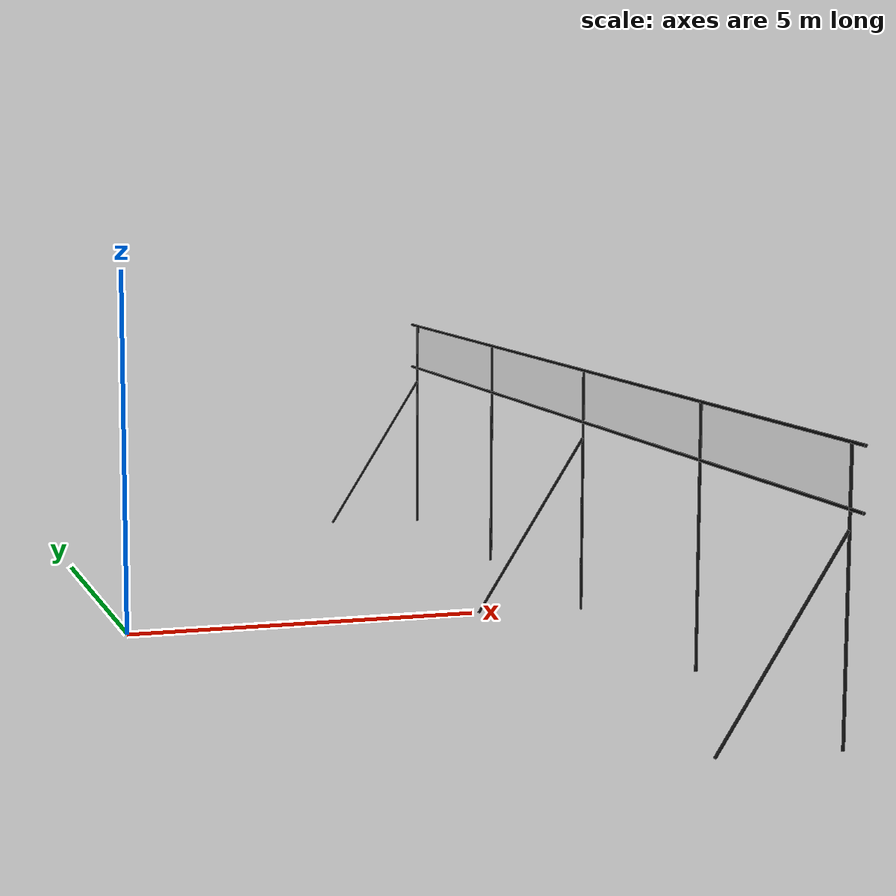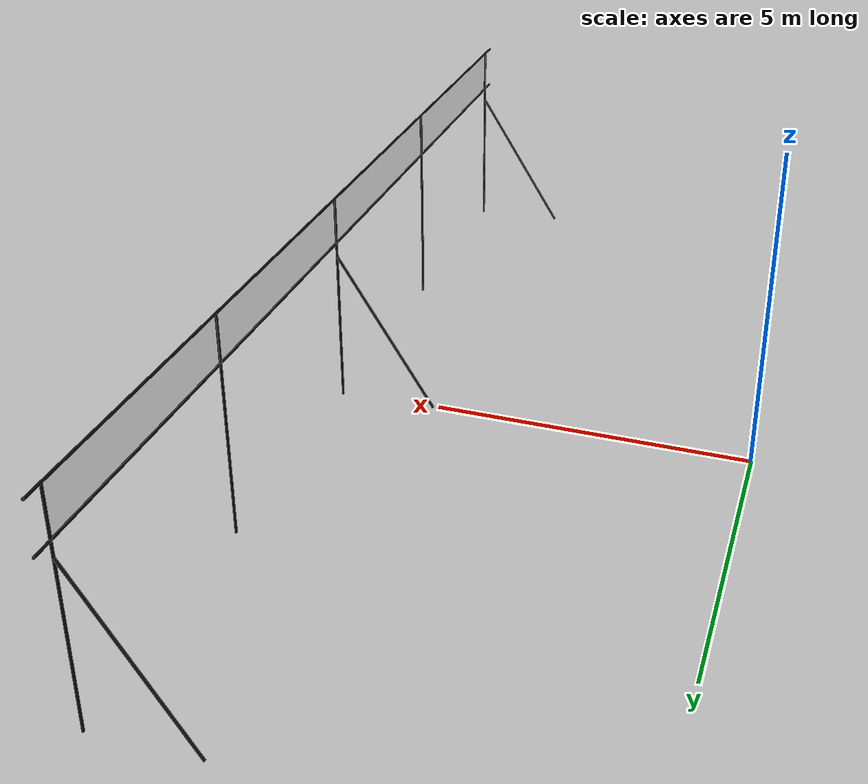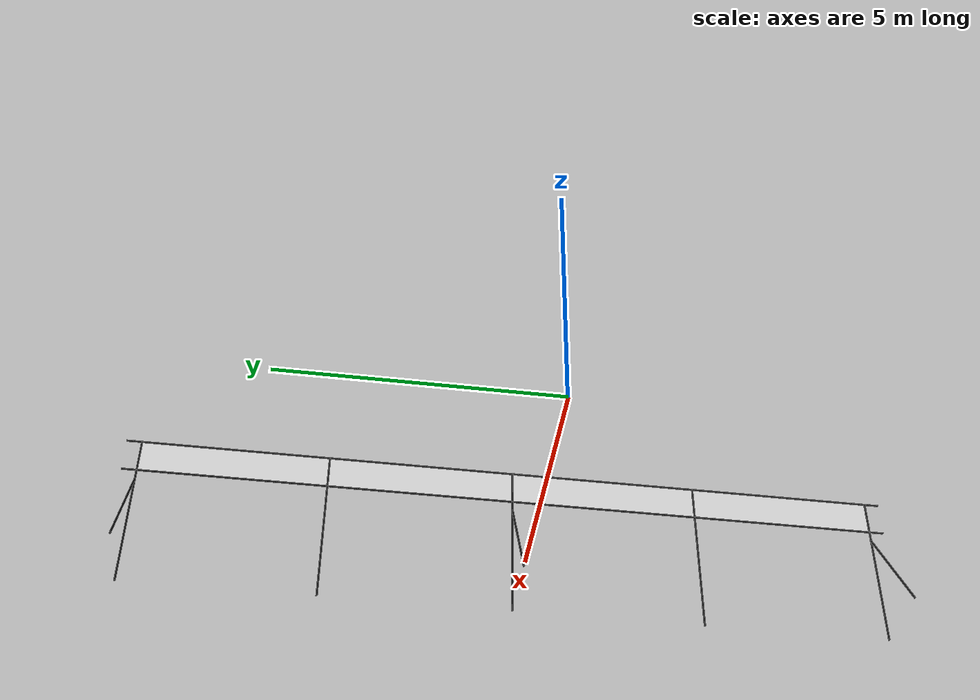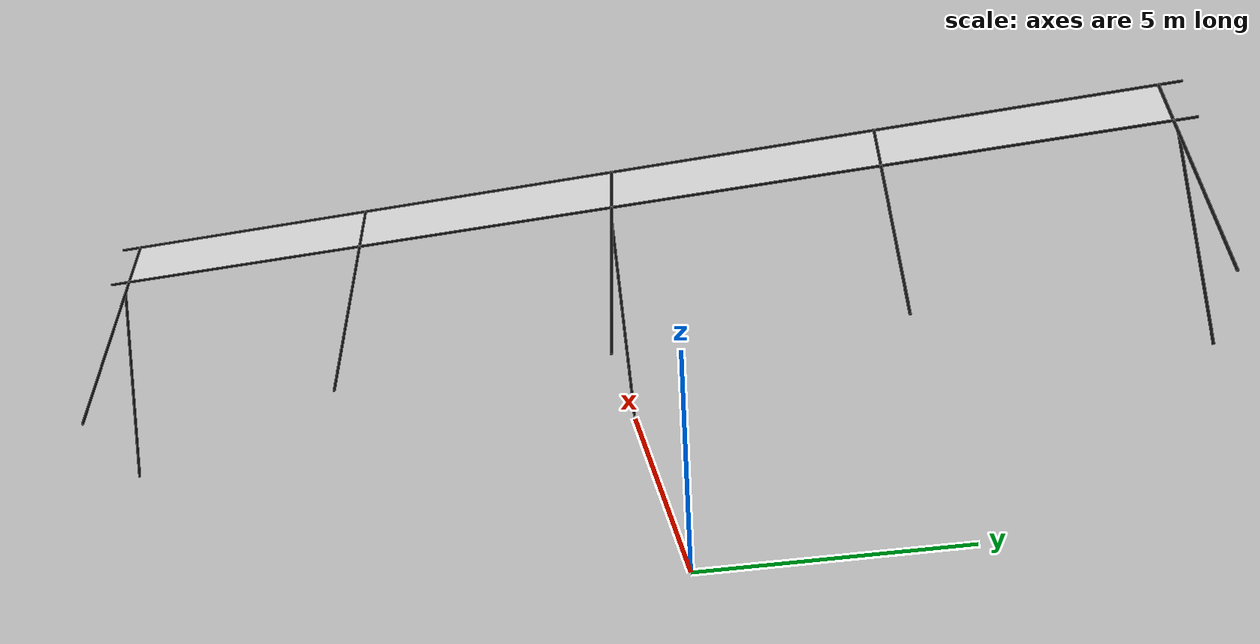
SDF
<?xml version="1.0" ?>
<sdf version="1.5">
<model name="frontage">
  <pose>0.0 0.0 0.0 0.0 0.0 0.0</pose>
  <static>1</static>

  <link name="link_1">
    <pose>6.68 -7.94 1.7 0.0 0.0 0.0</pose>
    <collision name="collision">
      <geometry>
	<cylinder>
	  <length>3.5</length>
	  <radius>0.02</radius>
        </cylinder>
      </geometry>
    </collision>
    <visual name="visual">
      <geometry>
	<cylinder>
	  <length>3.5</length>
	  <radius>0.02</radius>
	</cylinder>
      </geometry>
      <material>
	<script>
	  <uri>file://media/materials/scripts/gazebo.material</uri>
	  <name>Gazebo/Chrome</name>
	</script>
        <shader type='vertex'>
          <normal_map>__default__</normal_map>
        </shader>
        <ambient>0.5 0.5 0.5 1</ambient>
        <diffuse>0.05 0.05 0.05 1</diffuse>
        <specular>0.01 0.01 0.01 1</specular>
        <emissive>0.1 0.1 0.1 1</emissive>
      </material>
    </visual>
  </link>

  <link name="link_2">
    <pose>6.68 0 1.7 0.0 0.0 0.0</pose>
    <collision name="collision">
      <geometry>
	<cylinder>
	  <length>3.5</length>
	  <radius>0.02</radius>
        </cylinder>
      </geometry>
    </collision>
    <visual name="visual">
      <geometry>
	<cylinder>
	  <length>3.5</length>
	  <radius>0.02</radius>
	</cylinder>
      </geometry>
      <material>
	<script>
	  <uri>file://media/materials/scripts/gazebo.material</uri>
	  <name>Gazebo/Chrome</name>
	</script>
        <shader type='vertex'>
          <normal_map>__default__</normal_map>
        </shader>
        <ambient>0.5 0.5 0.5 1</ambient>
        <diffuse>0.05 0.05 0.05 1</diffuse>
        <specular>0.01 0.01 0.01 1</specular>
        <emissive>0.1 0.1 0.1 1</emissive>
      </material>
    </visual>
  </link>

  <link name="link_3">
    <pose>6.68 7.93 1.7 0.0 0.0 0.0</pose>
    <collision name="collision">
      <geometry>
	<cylinder>
	  <length>3.5</length>
	  <radius>0.02</radius>
        </cylinder>
      </geometry>
    </collision>
    <visual name="visual">
      <geometry>
	<cylinder>
	  <length>3.5</length>
	  <radius>0.02</radius>
	</cylinder>
      </geometry>
      <material>
	<script>
	  <uri>file://media/materials/scripts/gazebo.material</uri>
	  <name>Gazebo/Chrome</name>
	</script>
        <shader type='vertex'>
          <normal_map>__default__</normal_map>
        </shader>
        <ambient>0.5 0.5 0.5 1</ambient>
        <diffuse>0.05 0.05 0.05 1</diffuse>
        <specular>0.01 0.01 0.01 1</specular>
        <emissive>0.1 0.1 0.1 1</emissive>
      </material>
    </visual>
  </link>

  <link name="link_10">
    <pose>6.68 -4 1.7 0.0 0.0 0.0</pose>
    <collision name="collision">
      <geometry>
	<cylinder>
	  <length>3.5</length>
	  <radius>0.02</radius>
        </cylinder>
      </geometry>
    </collision>
    <visual name="visual">
      <geometry>
	<cylinder>
	  <length>3.5</length>
	  <radius>0.02</radius>
	</cylinder>
      </geometry>
      <material>
	<script>
	  <uri>file://media/materials/scripts/gazebo.material</uri>
	  <name>Gazebo/Chrome</name>
	</script>
        <shader type='vertex'>
          <normal_map>__default__</normal_map>
        </shader>
        <ambient>0.5 0.5 0.5 1</ambient>
        <diffuse>0.05 0.05 0.05 1</diffuse>
        <specular>0.01 0.01 0.01 1</specular>
        <emissive>0.1 0.1 0.1 1</emissive>
      </material>
    </visual>
  </link>

  <link name="link_11">
    <pose>6.68 3.96 1.7 0.0 0.0 0.0</pose>
    <collision name="collision">
      <geometry>
	<cylinder>
	  <length>3.5</length>
	  <radius>0.02</radius>
        </cylinder>
      </geometry>
    </collision>
    <visual name="visual">
      <geometry>
	<cylinder>
	  <length>3.5</length>
	  <radius>0.02</radius>
	</cylinder>
      </geometry>
      <material>
	<script>
	  <uri>file://media/materials/scripts/gazebo.material</uri>
	  <name>Gazebo/Chrome</name>
	</script>
        <shader type='vertex'>
          <normal_map>__default__</normal_map>
        </shader>
        <ambient>0.5 0.5 0.5 1</ambient>
        <diffuse>0.05 0.05 0.05 1</diffuse>
        <specular>0.01 0.01 0.01 1</specular>
        <emissive>0.1 0.1 0.1 1</emissive>
      </material>
    </visual>
  </link>

  <link name="link_4">
    <pose>6.68 0 2.7 1.5707 0.0 0.0</pose>
    <collision name="collision">
      <geometry>
	<cylinder>
	  <length>16.5</length>
	  <radius>0.02</radius>
        </cylinder>
      </geometry>
    </collision>
    <visual name="visual">
      <geometry>
	<cylinder>
	  <length>16.5</length>
	  <radius>0.02</radius>
	</cylinder>
      </geometry>
      <material>
	<script>
	  <uri>file://media/materials/scripts/gazebo.material</uri>
	  <name>Gazebo/Chrome</name>
	</script>
        <shader type='vertex'>
          <normal_map>__default__</normal_map>
        </shader>
        <ambient>0.5 0.5 0.5 1</ambient>
        <diffuse>0.05 0.05 0.05 1</diffuse>
        <specular>0.01 0.01 0.01 1</specular>
        <emissive>0.1 0.1 0.1 1</emissive>
      </material>
    </visual>
  </link>

  <link name="link_5">
    <pose>6.68 0 3.45 1.5707 0.0 0.0</pose>
    <collision name="collision">
      <geometry>
	<cylinder>
	  <length>16.5</length>
	  <radius>0.02</radius>
        </cylinder>
      </geometry>
    </collision>
    <visual name="visual">
      <geometry>
	<cylinder>
	  <length>16.5</length>
	  <radius>0.02</radius>
	</cylinder>
      </geometry>
      <material>
	<script>
	  <uri>file://media/materials/scripts/gazebo.material</uri>
	  <name>Gazebo/Chrome</name>
	</script>
        <shader type='vertex'>
          <normal_map>__default__</normal_map>
        </shader>
        <ambient>0.5 0.5 0.5 1</ambient>
        <diffuse>0.05 0.05 0.05 1</diffuse>
        <specular>0.01 0.01 0.01 1</specular>
        <emissive>0.1 0.1 0.1 1</emissive>
      </material>
    </visual>
  </link>

  <link name="link_6">
    <pose>5.89 -7.94 1.225 0 0.565 0.0</pose>
    <collision name="collision">
      <geometry>
	<cylinder>
	  <length>2.93</length>
	  <radius>0.02</radius>
        </cylinder>
      </geometry>
    </collision>
    <visual name="visual">
      <geometry>
	<cylinder>
	  <length>2.93</length>
	  <radius>0.02</radius>
	</cylinder>
      </geometry>
      <material>
	<script>
	  <uri>file://media/materials/scripts/gazebo.material</uri>
	  <name>Gazebo/Chrome</name>
	</script>
        <shader type='vertex'>
          <normal_map>__default__</normal_map>
        </shader>
        <ambient>0.5 0.5 0.5 1</ambient>
        <diffuse>0.05 0.05 0.05 1</diffuse>
        <specular>0.01 0.01 0.01 1</specular>
        <emissive>0.1 0.1 0.1 1</emissive>
      </material>
    </visual>
  </link>

  <link name="link_7">
    <pose>5.89 0 1.225 0 0.565 0.0</pose>
    <collision name="collision">
      <geometry>
	<cylinder>
	  <length>2.93</length>
	  <radius>0.02</radius>
        </cylinder>
      </geometry>
    </collision>
    <visual name="visual">
      <geometry>
	<cylinder>
	  <length>2.93</length>
	  <radius>0.02</radius>
	</cylinder>
      </geometry>
      <material>
	<script>
	  <uri>file://media/materials/scripts/gazebo.material</uri>
	  <name>Gazebo/Chrome</name>
	</script>
        <shader type='vertex'>
          <normal_map>__default__</normal_map>
        </shader>
        <ambient>0.5 0.5 0.5 1</ambient>
        <diffuse>0.05 0.05 0.05 1</diffuse>
        <specular>0.01 0.01 0.01 1</specular>
        <emissive>0.1 0.1 0.1 1</emissive>
      </material>
    </visual>
  </link>

  <link name="link_8">
    <pose>5.89 7.93 1.225 0 0.565 0.0</pose>
    <collision name="collision">
      <geometry>
	<cylinder>
	  <length>2.93</length>
	  <radius>0.02</radius>
        </cylinder>
      </geometry>
    </collision>
    <visual name="visual">
      <geometry>
	<cylinder>
	  <length>2.93</length>
	  <radius>0.02</radius>
	</cylinder>
      </geometry>
      <material>
	<script>
	  <uri>file://media/materials/scripts/gazebo.material</uri>
	  <name>Gazebo/Chrome</name>
	</script>
        <shader type='vertex'>
          <normal_map>__default__</normal_map>
        </shader>
        <ambient>0.5 0.5 0.5 1</ambient>
        <diffuse>0.05 0.05 0.05 1</diffuse>
        <specular>0.01 0.01 0.01 1</specular>
        <emissive>0.1 0.1 0.1 1</emissive>
      </material>
    </visual>
  </link>

  <link name='link_9'>
    <pose>6.68 0 3.075 0 0 0</pose>
      <visual name='visual'>
        <geometry>
          <box>
            <size>0.002 15.87 0.75</size>
          </box>
        </geometry>
        <material>
          <lighting>1</lighting>
          <shader type='vertex'>
            <normal_map>__default__</normal_map>
          </shader>
          <ambient>1 1 1 1</ambient>
          <diffuse>1 1 1 1</diffuse>
          <specular>1 1 1 1</specular>
          <emissive>1 1 1 1</emissive>
        </material>
        <cast_shadows>1</cast_shadows>
        <transparency>0.65</transparency>
      </visual>
      <collision name='collision'>
        <geometry>
          <box>
            <size>0.002 15.87 0.75</size>
          </box>
        </geometry>
      </collision>
    </link>

</model>
</sdf>
